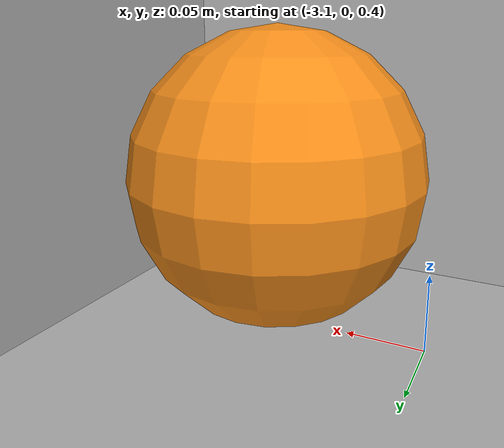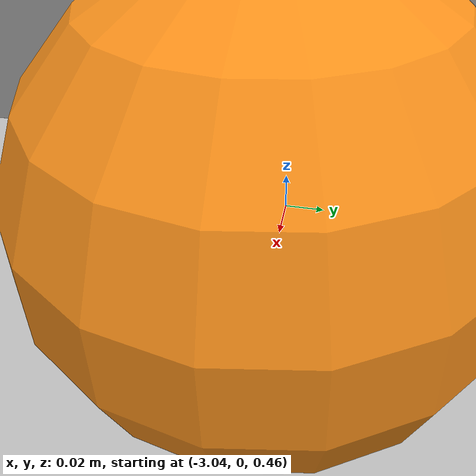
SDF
<sdf version="1.7">
 <world name="default">
  <light name="sun" type="directional">
   <pose>0 0 10 0 -0 0</pose>
   <diffuse>0.8 0.8 0.8 1</diffuse>
   <specular>0.2 0.2 0.2 1</specular>
   <attenuation>
    <range>1000</range>
    <constant>0.9</constant>
    <linear>0.01</linear>
    <quadratic>0.001</quadratic>
   </attenuation>
   <direction>-0.5 0.1 -0.9</direction>
   <spot><inner_angle>0</inner_angle><outer_angle>0</outer_angle><falloff>0</falloff></spot>
  </light>
  <model name="ground_plane">
   <static>1</static>
   <link name="link">
    <collision name="collision">
     <geometry><plane><normal>0 0 1</normal><size>100 100</size></plane></geometry>
     <surface><friction><ode><mu>100</mu><mu2>50</mu2></ode></friction></surface>
    </collision>
   </link>
  </model>
  <model name="unit_sphere_r">
   <pose>-3 0 0.5 0 -0 0</pose>
   <link name="link">
    <inertial>
     <mass>1</mass>
     <inertia><ixx>0.1</ixx><ixy>0</ixy><ixz>0</ixz><iyy>0.1</iyy><iyz>0</iyz><izz>0.1</izz></inertia>
    </inertial>
    <collision name="collision"><geometry><sphere><radius>0.095</radius></sphere></geometry></collision>
    <visual name="visual">
     <geometry><sphere><radius>0.095</radius></sphere></geometry>
     <material>
      <script><name>Gazebo/Orange</name><uri>file://media/materials/scripts/gazebo.material</uri></script>
     </material>
    </visual>
   </link>
  </model>
  <include><static>1</static><name>lapangan</name><uri>model://lapangan</uri></include>
  <gravity>0 0 -9.8</gravity>
  <magnetic_field>6e-06 2.3e-05 -4.2e-05</magnetic_field>
  <atmosphere type="adiabatic"/>
  <physics type="ode">
   <max_step_size>0.001</max_step_size>
   <real_time_factor>1</real_time_factor>
   <real_time_update_rate>1000</real_time_update_rate>
  </physics>
  <scene><ambient>0.4 0.4 0.4 1</ambient><background>0.7 0.7 0.7 1</background><shadows>1</shadows></scene>
  <spherical_coordinates>
   <surface_model>EARTH_WGS84</surface_model>
   <latitude_deg>0</latitude_deg>
   <longitude_deg>0</longitude_deg>
   <elevation>0</elevation>
   <heading_deg>0</heading_deg>
  </spherical_coordinates>
 </world>
</sdf>

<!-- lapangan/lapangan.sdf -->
<sdf version="1.5">
    <model name="lapangan">
      <pose>0 0 0  0 0 0</pose>
      <static>true</static>
      <link name="body">
        <visual name="visual">
          <geometry>
            <mesh>
              <uri>model://lapangan/meshes/lapangan.dae</uri>
              <scale>0.001 0.001 0.001</scale>
            </mesh>
          </geometry>
        </visual>
        <collision name="collision">
          <geometry>
            <mesh>
              <uri>model://lapangan/meshes/lapangan.dae</uri>
              <scale>0.001 0.001 0.001</scale>
            </mesh>
          </geometry>
        </collision>
      </link>
    </model>
</sdf>
